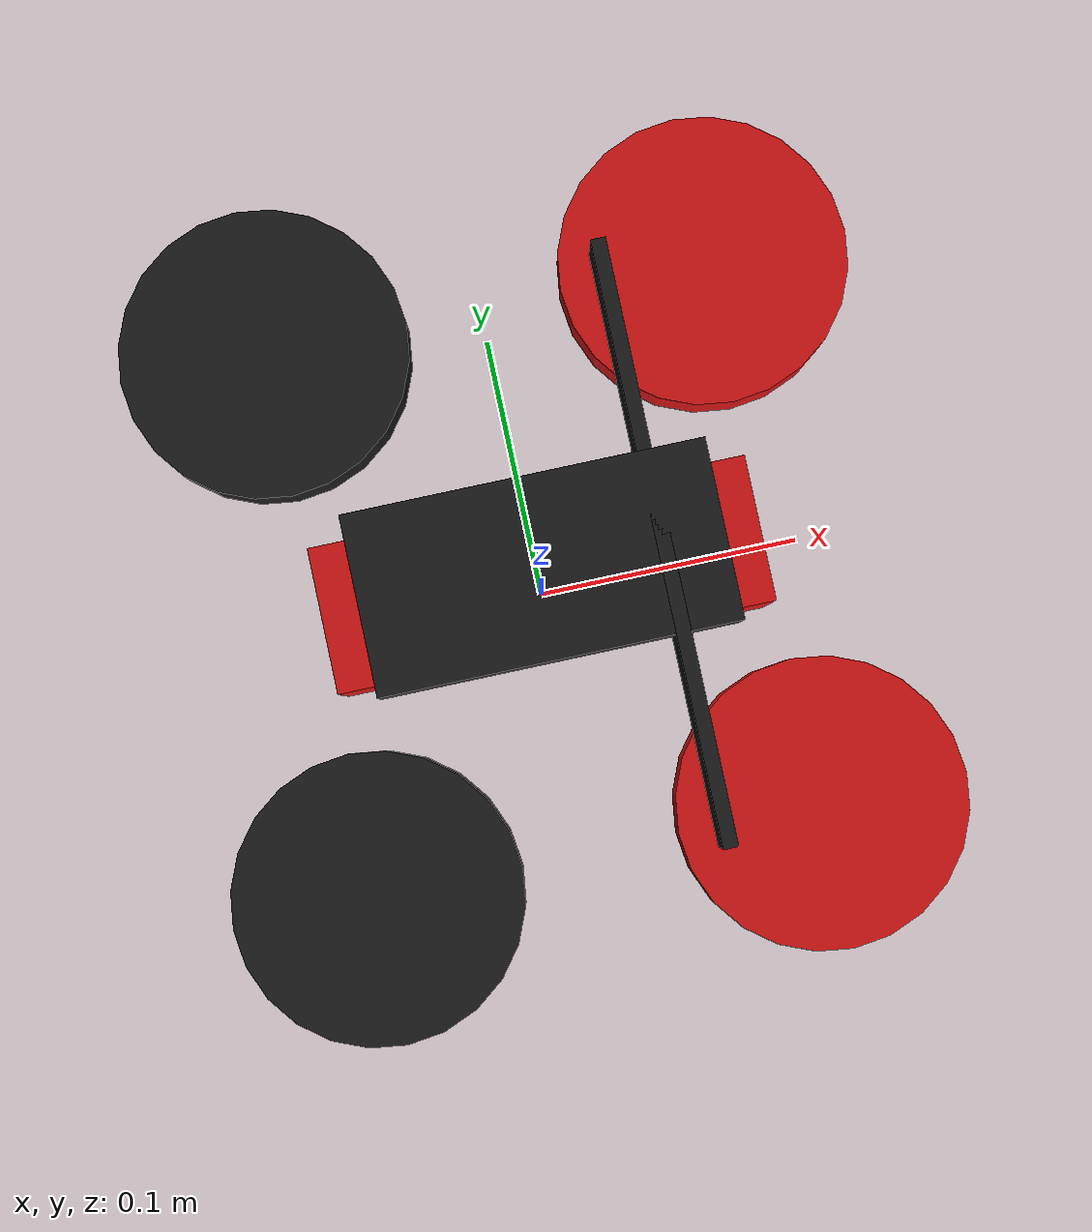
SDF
<?xml version='1.0'?>
<sdf version='1.4'>
  <model name="bebop_with_slamdunk">
    <pose>0 0 .1 0 0 0</pose>

    <link name="chassis">
      <velocity_decay>
        <linear>0.001</linear>
      </velocity_decay>

      <inertial>
        <mass>0.536</mass><!-- With bumpers. Tuned for correct nominal hover thrust, mass is higher than in real life (~0.40kg) -->
        <inertia>
          <ixx> 0.000906 </ixx>
          <iyy> 0.001242 </iyy>
          <izz> 0.002054 </izz>
          <ixy> 0. </ixy>
          <ixz> 0.000014 </ixz>
          <iyz> 0. </iyz>
        </inertia>
      </inertial>

      <collision name="collision">
        <geometry>
          <box>
            <size>0.4 0.4 0.05</size>
          </box>
        </geometry>
      </collision>

      <visual name="visual">
        <geometry>
          <box>
            <size>0.15 0.05 0.05</size>
          </box>
        </geometry>
        <material>
          <diffuse>0.82 0.07 0.07 1</diffuse>
          <ambient>0.82 0.07 0.07 1</ambient>
        </material>
      </visual>

      <sensor name="contactsensor" type="contact">
        <contact>
          <collision>collision</collision>
        </contact>
      </sensor>
    </link>

    <!-- SLAMDUNK -->
    <include name="slamdunk">
      <uri>model://slamdunk</uri>
      <pose>0 0 .05 0 0 0</pose>
    </include>

    <joint type="fixed" name="slamdunk_joint">
      <parent>chassis</parent>
      <child>slamdunk::slamdunk_link</child>
    </joint>

    <!-- MOTORS -->
    <link name="nw_motor">
      <pose>0.077 0.095 0 0 0 0</pose>
      <inertial>
        <mass>0.01</mass>
        <inertia>
          <ixx>0.0001</ixx>
          <iyy>0.0001</iyy>
          <izz>0.0001</izz>
          <ixy>0</ixy>
          <iyz>0</iyz>
          <ixz>0</ixz>
        </inertia>
      </inertial>
      <visual name="visual">
        <geometry>
          <cylinder>
            <radius>0.05</radius>
            <length>0.02</length>
          </cylinder>
        </geometry>
        <material>
          <diffuse>0.82 0.07 0.07 1</diffuse>
          <ambient>0.82 0.07 0.07 1</ambient>
        </material>
      </visual>
    </link>

    <joint type="fixed" name="nw_motor_joint">
      <parent>chassis</parent>
      <child>nw_motor</child>
    </joint>

    <link name="se_motor">
      <pose>-0.077 -0.095 0 0 0 0</pose>
      <inertial>
        <mass>0.01</mass>
        <inertia>
          <ixx>0.0001</ixx>
          <iyy>0.0001</iyy>
          <izz>0.0001</izz>
          <ixy>0</ixy>
          <iyz>0</iyz>
          <ixz>0</ixz>
        </inertia>
      </inertial>
      <visual name="visual">
        <geometry>
          <cylinder>
            <radius>0.05</radius>
            <length>0.02</length>
          </cylinder>
        </geometry>
        <material>
          <diffuse>0.1 0.1 0.1 1</diffuse>
          <ambient>0.1 0.1 0.1 1</ambient>
        </material>
      </visual>
    </link>

    <joint type="fixed" name="se_motor_joint">
      <parent>chassis</parent>
      <child>se_motor</child>
    </joint>

    <link name="ne_motor">
      <pose>0.077 -0.095 0 0 0 0</pose>
      <inertial>
        <mass>0.01</mass>
        <inertia>
          <ixx>0.0001</ixx>
          <iyy>0.0001</iyy>
          <izz>0.0001</izz>
          <ixy>0</ixy>
          <iyz>0</iyz>
          <ixz>0</ixz>
        </inertia>
      </inertial>
      <visual name="visual">
        <geometry>
          <cylinder>
            <radius>0.05</radius>
            <length>0.02</length>
          </cylinder>
        </geometry>
        <material>
          <diffuse>0.82 0.07 0.07 1</diffuse>
          <ambient>0.82 0.07 0.07 1</ambient>
        </material>
      </visual>
    </link>

    <joint type="fixed" name="ne_motor_joint">
      <parent>chassis</parent>
      <child>ne_motor</child>
    </joint>

    <link name="sw_motor">
      <pose>-0.077 0.095 0 0 0 0</pose>
      <inertial>
        <mass>0.01</mass>
        <inertia>
          <ixx>0.0001</ixx>
          <iyy>0.0001</iyy>
          <izz>0.0001</izz>
          <ixy>0</ixy>
          <iyz>0</iyz>
          <ixz>0</ixz>
        </inertia>
      </inertial>
      <visual name="visual">
        <geometry>
          <cylinder>
            <radius>0.05</radius>
            <length>0.02</length>
          </cylinder>
        </geometry>
        <material>
          <diffuse>0.1 0.1 0.1 1</diffuse>
          <ambient>0.1 0.1 0.1 1</ambient>
        </material>
      </visual>
    </link>

    <joint type="fixed" name="sw_motor_joint">
      <parent>chassis</parent>
      <child>sw_motor</child>
    </joint>

    <!-- CAMERAS -->

    <link name="front_camera">
      <pose>0.15 0 0 -1.57 0.33 0</pose><!-- Bebop camera output is rotated 90 degrees and pitched slightly downwards -->
      <inertial>
        <mass>0.001</mass>
        <inertia>
          <ixx>0.0001</ixx>
          <iyy>0.0001</iyy>
          <izz>0.0001</izz>
          <ixy>0</ixy>
          <iyz>0</iyz>
          <ixz>0</ixz>
        </inertia>
      </inertial>
      <sensor type="wideanglecamera" name="front_camera">
        <update_rate>15.0</update_rate><!-- adjust with MT9F002_TARGET_FPS -->
        <camera name="front_camera">
          <image>
            <width>3746</width><!-- with MT9F002_OUTPUT_SCALER = 1.00, will be scaled by NPS --><!-- Reduced to 3 rad FoV for Gazebo 7 compatibility -->
            <height>3288</height>
            <format>R8G8B8</format>
          </image>
          <horizontal_fov>3.00</horizontal_fov>
          <lens>
            <type>equisolid_angle</type>
            <scale_to_hfov>true</scale_to_hfov>
            <env_texture_size>2048</env_texture_size><!-- with MT9F002_OUTPUT_SCALER = 1.00, will be scaled by NPS -->
          </lens>
          <clip>
            <near>0.01</near>
            <far>300</far>
          </clip>
          <noise>
            <type>gaussian</type>
            <!-- Noise is sampled independently per pixel on each frame. That pixel's
              noise value is added to each of its color channels, which at that point lie
              in the range [0,1]. -->
            <mean>0.0</mean>
            <stddev>0.007</stddev>
          </noise>
        </camera>
      </sensor>
    </link>

    <joint name="front_camera_joint" type="fixed">
      <parent>chassis</parent>
      <child>front_camera</child>
    </joint>

    <link name="bottom_camera">
      <pose>0 0 0 0 1.57 0</pose>
      <inertial>
        <mass>0.001</mass>
        <inertia>
          <ixx>0.0001</ixx>
          <iyy>0.0001</iyy>
          <izz>0.0001</izz>
          <ixy>0</ixy>
          <iyz>0</iyz>
          <ixz>0</ixz>
        </inertia>
      </inertial>
      <sensor type="camera" name="bottom_camera">
        <update_rate>30.0</update_rate>
        <camera name="bottom_camera">
          <horizontal_fov>0.7175</horizontal_fov>
          <image>
            <width>240</width>
            <height>240</height>
            <format>R8G8B8</format>
          </image>
          <clip>
            <near>0.02</near>
            <far>300</far>
          </clip>
          <noise>
            <type>gaussian</type>
            <!-- Noise is sampled independently per pixel on each frame. That pixel's
              noise value is added to each of its color channels, which at that point lie
              in the range [0,1]. -->
            <mean>0.0</mean>
            <stddev>0.007</stddev>
          </noise>
        </camera>
      </sensor>
    </link>

    <joint name="bottom_camera_joint" type="fixed">
      <parent>chassis</parent>
      <child>bottom_camera</child>
    </joint>
  </model>
</sdf>

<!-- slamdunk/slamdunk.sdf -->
<sdf version='1.4'>
  <model name="slamdunk">
    <link name="slamdunk_link">
      <visual name="visual">
        <geometry>
          <box>
            <size>0.12 0.06 0.025</size>
          </box>
        </geometry>
        <material>
          <diffuse>0.1 0.1 0.1 1</diffuse>
          <ambient>0.1 0.1 0.1 1</ambient>
        </material>
      </visual>
      <visual name="visual2">
        <pose>0.04 0 0 0 0 0</pose>
        <geometry>
          <box>
            <size>0.005 0.2 0.025</size>
          </box>
        </geometry>
        <material>
          <diffuse>0.1 0.1 0.1 1</diffuse>
          <ambient>0.1 0.1 0.1 1</ambient>
        </material>
      </visual>
      <inertial>
        <mass>0.135</mass>
        <inertia>
          <ixx> 0.0001 </ixx>
          <iyy> 0.0002 </iyy>
          <izz> 0.0002 </izz>
        </inertia>
      </inertial>
      <collision name="slamdunk_collision">
        <geometry>
          <box>
            <size>0.12 0.06 0.025</size>
          </box>
        </geometry>
      </collision>
      <sensor type="depth" name="depth_camera">
        <pose>0.05 0.1 0 0 0 0</pose>
        <update_rate>30.0</update_rate>
        <camera name="depth_cam">
          <horizontal_fov>0.7175</horizontal_fov>
          <image>
            <width>96</width>
            <height>96</height>
            <format>R8G8B8</format>
          </image>
          <clip>
            <near>0.02</near>
            <far>300</far>
          </clip>
        </camera>
        <plugin name="depth_controller" filename="libgazebo_ros_depth_camera.so">
          <alwaysOn>true</alwaysOn>
          <updateRate>0.0</updateRate>
          <cameraName>slamdunk_camera</cameraName>
          <imageTopicName>rgb/image_rect_color</imageTopicName>
          <cameraInfoTopicName>rgb/camera_info</cameraInfoTopicName>
          <depthImageTopicName>/depth_map/image</depthImageTopicName>
          <depthImageCameraInfoTopicName>/depth_map/camera_info</depthImageCameraInfoTopicName>
          <pointCloudTopicName>points</pointCloudTopicName>
          <frameName>cam_optical_frame</frameName>
          <pointCloudCutoff>0.02</pointCloudCutoff>
        </plugin>
      </sensor>
      <sensor type="camera" name="left_rgb_rect">
        <pose>0.05 0.1 0 0 0 0</pose>
        <update_rate>30.0</update_rate>
        <camera name="left_rgb_rect_cam">
          <horizontal_fov>0.7175</horizontal_fov>
          <image>
            <width>576</width>
            <height>576</height>
            <format>R8G8B8</format>
          </image>
          <clip>
            <near>0.02</near>
            <far>300</far>
          </clip>
        </camera>
        <plugin name="cam_controller" filename="libgazebo_ros_camera.so">
          <alwaysOn>true</alwaysOn>
          <updateRate>0.0</updateRate>
          <cameraName>left_rgb_rect</cameraName>
          <imageTopicName>image_rect_color</imageTopicName>
          <cameraInfoTopicName>camera_info</cameraInfoTopicName>
          <frameName>cam_optical_frame2</frameName>
        </plugin>
      </sensor>
      <sensor type="imu" name="imu_sensor">
        <update_rate>200</update_rate>
        <imu>
        </imu>
        <plugin name="imu_controller" filename="libgazebo_ros_imu_sensor.so">
          <alwaysOn>true</alwaysOn>
          <updateRateHZ>0.0</updateRateHZ>
          <robotNamespace></robotNamespace>
          <topicName>imu</topicName>
          <bodyName>slamdunk_link</bodyName>
          <frameName>slamdunk_link</frameName>
        </plugin>
      </sensor>
    </link>
  </model>
</sdf>
